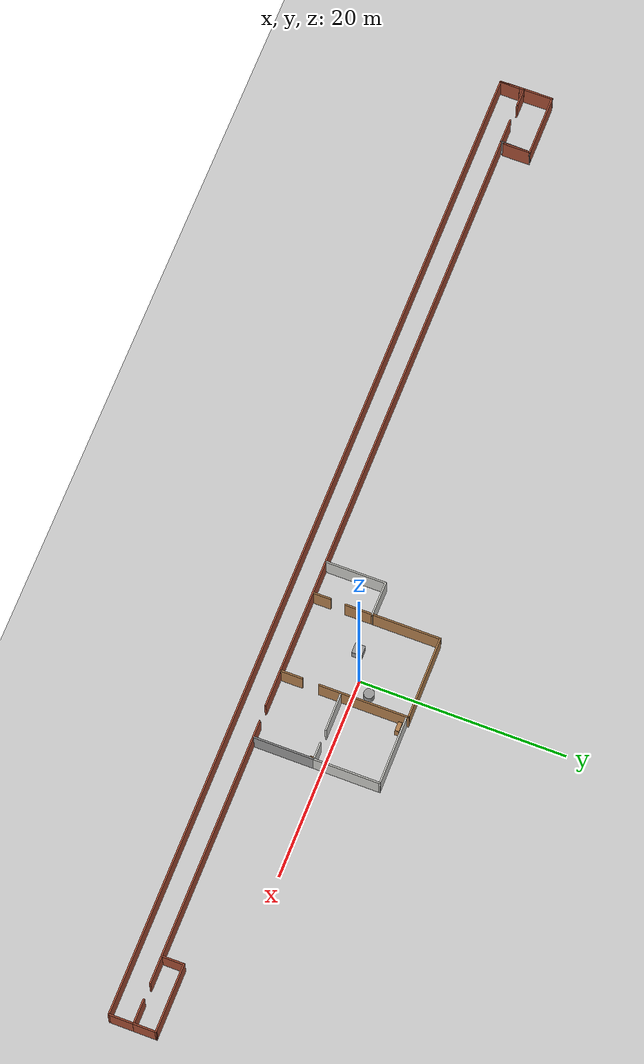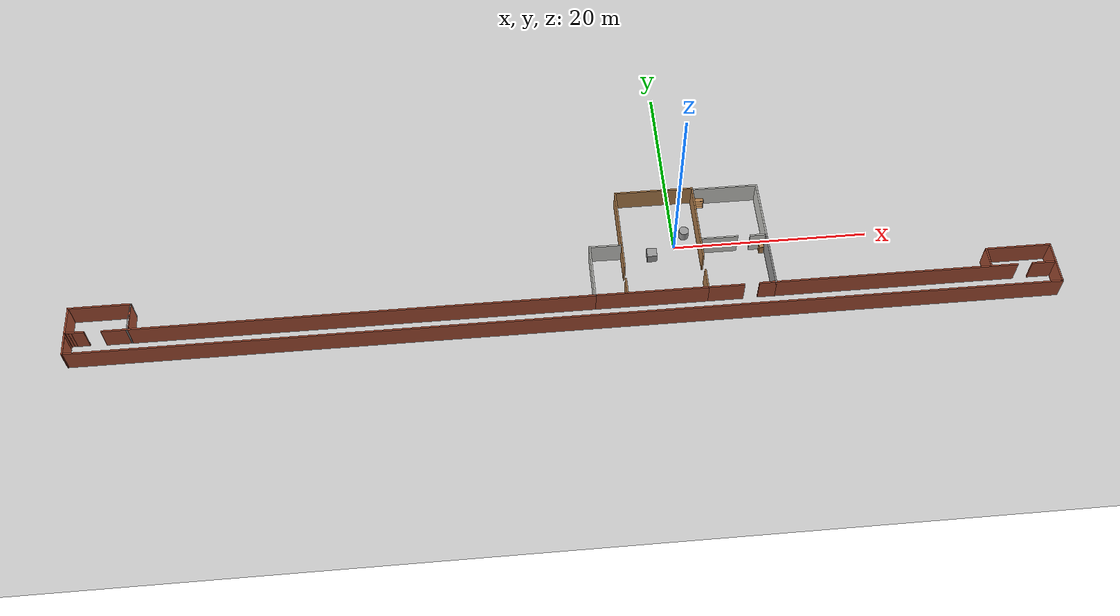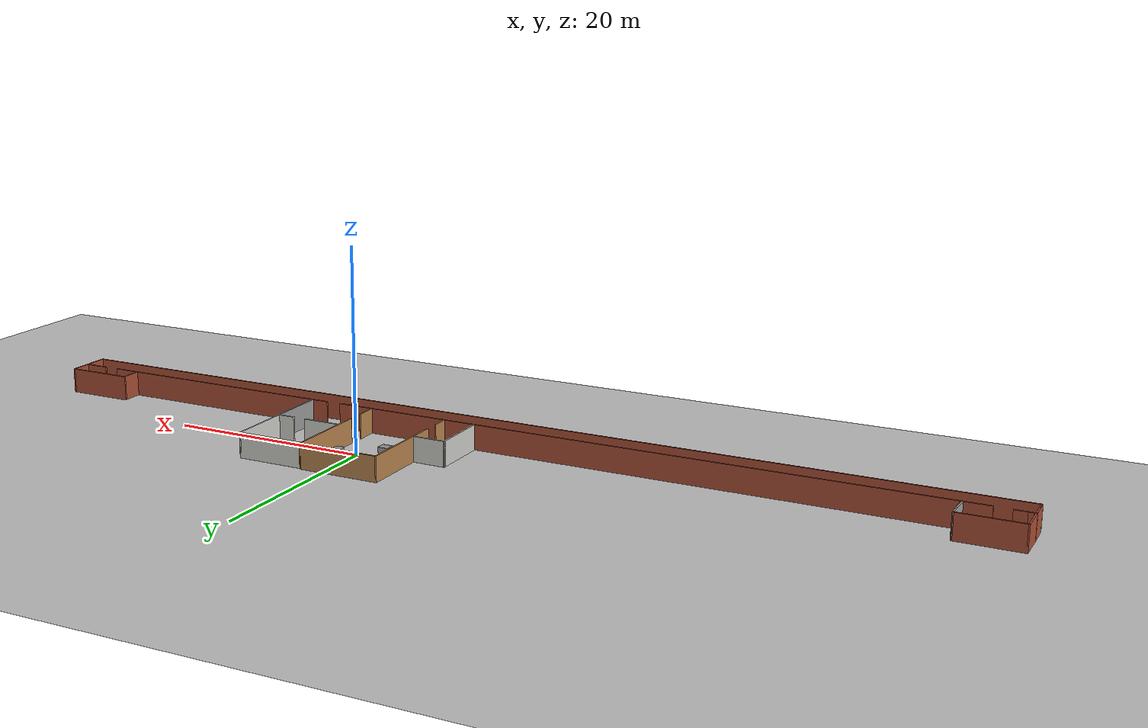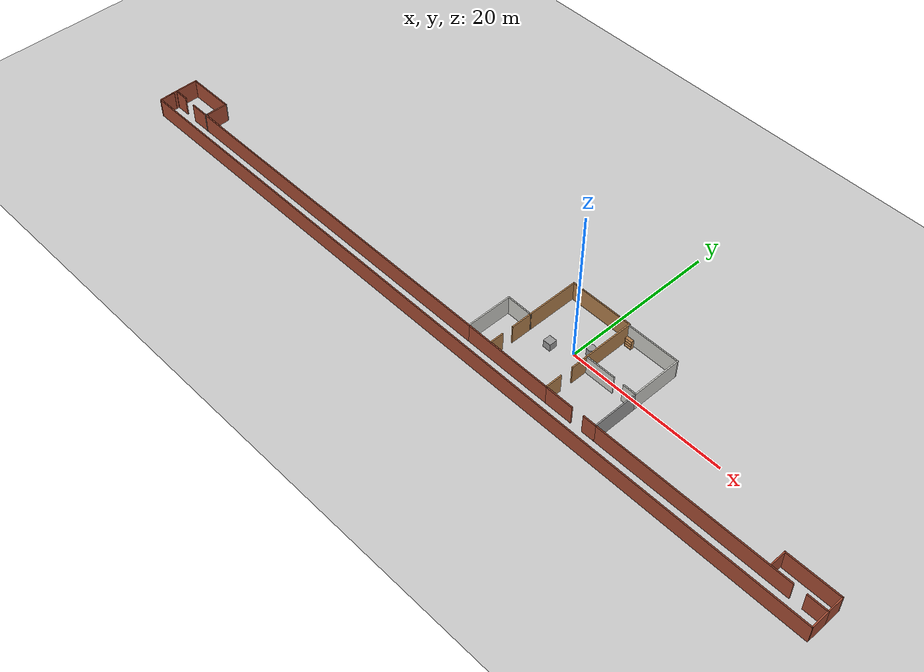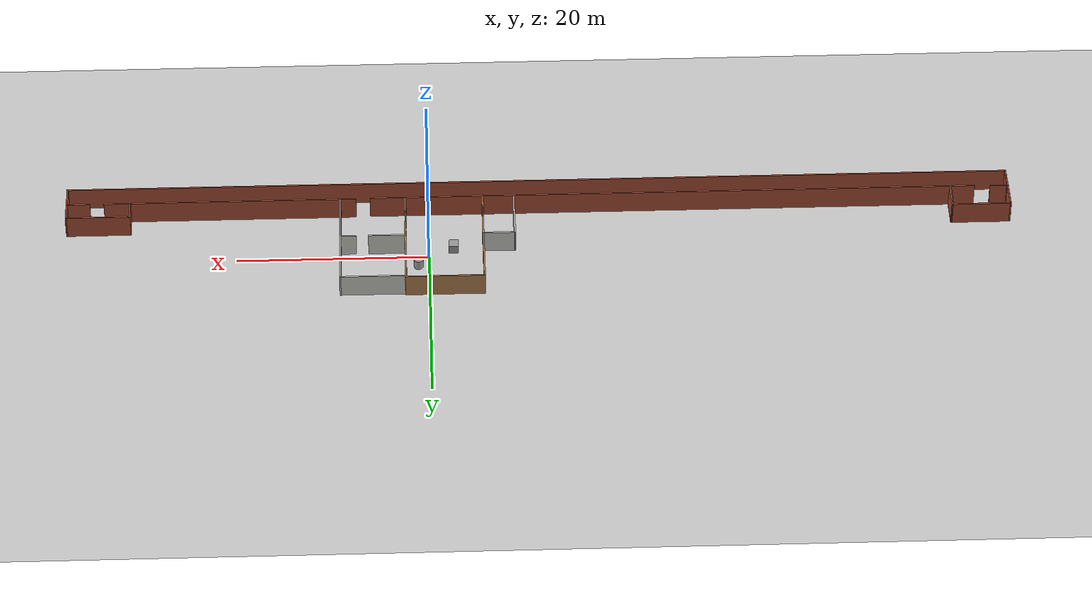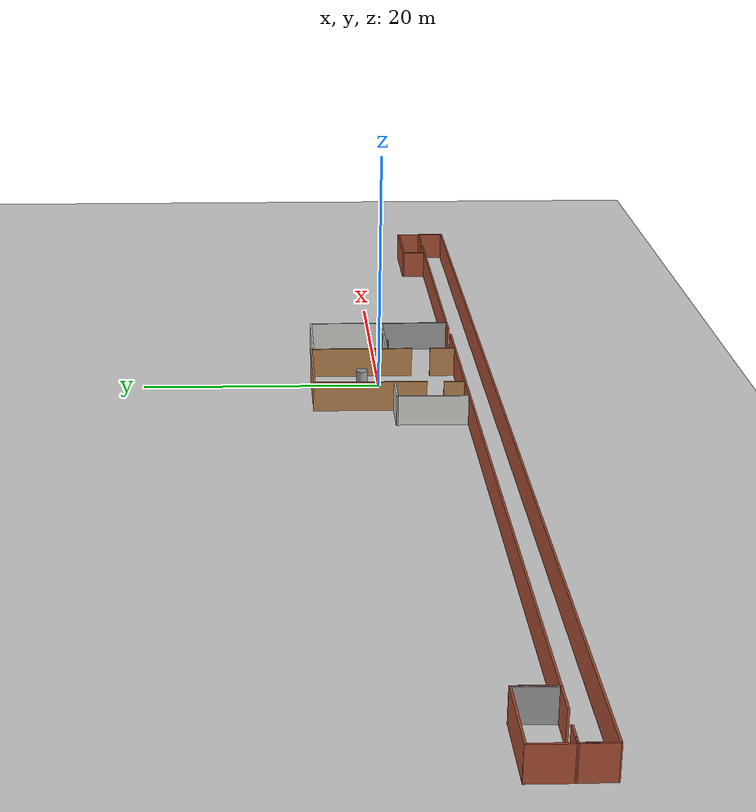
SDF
<sdf version="1.6">
 <world name="default">
  <model name="ground_plane">
   <static>1</static>
   <link name="link">
    <collision name="collision">
     <geometry><plane><normal>0 0 1</normal><size>100 100</size></plane></geometry>
     <surface>
      <contact><collide_bitmask>65535</collide_bitmask></contact>
      <friction><ode><mu>100</mu><mu2>50</mu2></ode></friction>
     </surface>
    </collision>
    <visual name="visual">
     <cast_shadows>0</cast_shadows>
     <geometry><plane><normal>0 0 1</normal><size>100 100</size></plane></geometry>
     <material>
      <script><uri>file://media/materials/scripts/gazebo.material</uri><name>Gazebo/Grey</name></script>
     </material>
    </visual>
   </link>
  </model>
  <light name="sun" type="directional">
   <pose>0 0 10 0 -0 0</pose>
   <diffuse>0.8 0.8 0.8 1</diffuse>
   <specular>0.2 0.2 0.2 1</specular>
   <attenuation>
    <range>1000</range>
    <constant>0.9</constant>
    <linear>0.01</linear>
    <quadratic>0.001</quadratic>
   </attenuation>
   <direction>-0.5 0.1 -0.9</direction>
  </light>
  <gravity>0 0 -9.8</gravity>
  <magnetic_field>6e-06 2.3e-05 -4.2e-05</magnetic_field>
  <atmosphere type="adiabatic"/>
  <physics name="default_physics" default="0" type="ode">
   <max_step_size>0.001</max_step_size>
   <real_time_factor>1</real_time_factor>
   <real_time_update_rate>1000</real_time_update_rate>
  </physics>
  <scene><ambient>0.4 0.4 0.4 1</ambient><background>0.7 0.7 0.7 1</background><shadows>1</shadows></scene>
  <audio><device>default</device></audio>
  <spherical_coordinates>
   <surface_model>EARTH_WGS84</surface_model>
   <latitude_deg>0</latitude_deg>
   <longitude_deg>0</longitude_deg>
   <elevation>0</elevation>
   <heading_deg>0</heading_deg>
  </spherical_coordinates>
  <model name="unit_cylinder">
   <pose>1.11383 1.37184 0.499998 3e-06 -2e-06 0</pose>
   <link name="link">
    <inertial>
     <mass>1</mass>
     <inertia><ixx>0.145833</ixx><ixy>0</ixy><ixz>0</ixz><iyy>0.145833</iyy><iyz>0</iyz><izz>0.125</izz></inertia>
    </inertial>
    <collision name="collision">
     <geometry><cylinder><radius>0.5</radius><length>1</length></cylinder></geometry>
    </collision>
    <visual name="visual">
     <geometry><cylinder><radius>0.5</radius><length>1</length></cylinder></geometry>
     <material>
      <script><name>Gazebo/Grey</name><uri>file://media/materials/scripts/gazebo.material</uri></script>
     </material>
    </visual>
   </link>
  </model>
  <model name="unit_box">
   <pose>-2.52458 -1.04449 0.499995 0 1e-05 0</pose>
   <link name="link">
    <inertial>
     <mass>1</mass>
     <inertia>
      <ixx>0.166667</ixx>
      <ixy>0</ixy>
      <ixz>0</ixz>
      <iyy>0.166667</iyy>
      <iyz>0</iyz>
      <izz>0.166667</izz>
     </inertia>
    </inertial>
    <collision name="collision"><geometry><box><size>1 1 1</size></box></geometry></collision>
    <visual name="visual">
     <geometry><box><size>1 1 1</size></box></geometry>
     <material>
      <script><name>Gazebo/Grey</name><uri>file://media/materials/scripts/gazebo.material</uri></script>
     </material>
    </visual>
   </link>
  </model>
  <model name="building.model">
   <pose>-11.5395 -1.66476 0 0 -0 0</pose>
   <link name="Wall_100">
    <collision name="Wall_100_Collision">
     <geometry><box><size>6.25 0.15 2.5</size></box></geometry>
     <pose>0 0 1.25 0 -0 0</pose>
    </collision>
    <visual name="Wall_100_Visual">
     <pose>0 0 1.25 0 -0 0</pose>
     <geometry><box><size>6.25 0.15 2.5</size></box></geometry>
     <material>
      <script><uri>file://media/materials/scripts/gazebo.material</uri><name>Gazebo/Bricks</name></script>
      <ambient>1 1 1 1</ambient>
     </material>
     <meta><layer>0</layer></meta>
    </visual>
    <pose>-46.2678 -2.14479 0 0 -0 0</pose>
   </link>
   <link name="Wall_101">
    <collision name="Wall_101_Collision">
     <geometry><box><size>2.75 0.15 2.5</size></box></geometry>
     <pose>0 0 1.25 0 -0 0</pose>
    </collision>
    <visual name="Wall_101_Visual">
     <pose>0 0 1.25 0 -0 0</pose>
     <geometry><box><size>2.75 0.15 2.5</size></box></geometry>
     <material>
      <script><uri>file://media/materials/scripts/gazebo.material</uri><name>Gazebo/Bricks</name></script>
      <ambient>1 1 1 1</ambient>
     </material>
     <meta><layer>0</layer></meta>
    </visual>
    <pose>-43.2178 -3.44479 0 0 -0 -1.5708</pose>
   </link>
   <link name="Wall_104">
    <collision name="Wall_104_Collision">
     <geometry><box><size>3.08499 0.15 2.5</size></box></geometry>
     <pose>0 0 1.25 0 -0 0</pose>
    </collision>
    <visual name="Wall_104_Visual">
     <pose>0 0 1.25 0 -0 0</pose>
     <geometry><box><size>3.08499 0.15 2.5</size></box></geometry>
     <material>
      <script><uri>file://media/materials/scripts/gazebo.material</uri><name>Gazebo/Grey</name></script>
      <ambient>1 1 1 1</ambient>
     </material>
     <meta><layer>0</layer></meta>
    </visual>
    <pose>-43.2604 -3.61166 0 0 -0 1.54173</pose>
   </link>
   <link name="Wall_106">
    <collision name="Wall_106_Collision">
     <geometry><box><size>2.25 0.15 2.5</size></box></geometry>
     <pose>0 0 1.25 0 -0 0</pose>
    </collision>
    <visual name="Wall_106_Visual">
     <pose>0 0 1.25 0 -0 0</pose>
     <geometry><box><size>2.25 0.15 2.5</size></box></geometry>
     <material>
      <script><uri>file://media/materials/scripts/gazebo.material</uri><name>Gazebo/Bricks</name></script>
      <ambient>1 1 1 1</ambient>
     </material>
     <meta><layer>0</layer></meta>
    </visual>
    <pose>49.3189 -3.94785 0 0 -0 1.5708</pose>
   </link>
   <link name="Wall_107">
    <collision name="Wall_107_Collision">
     <geometry><box><size>6.75 0.15 2.5</size></box></geometry>
     <pose>0 0 1.25 0 -0 0</pose>
    </collision>
    <visual name="Wall_107_Visual">
     <pose>0 0 1.25 0 -0 0</pose>
     <geometry><box><size>6.75 0.15 2.5</size></box></geometry>
     <material>
      <script><uri>file://media/materials/scripts/gazebo.material</uri><name>Gazebo/Bricks</name></script>
      <ambient>1 1 1 1</ambient>
     </material>
     <meta><layer>0</layer></meta>
    </visual>
    <pose>46.0189 -2.89785 0 0 -0 3.14159</pose>
   </link>
   <link name="Wall_108">
    <collision name="Wall_108_Collision">
     <geometry><box><size>2.25 0.15 2.5</size></box></geometry>
     <pose>0 0 1.25 0 -0 0</pose>
    </collision>
    <visual name="Wall_108_Visual">
     <pose>0 0 1.25 0 -0 0</pose>
     <geometry><box><size>2.25 0.15 2.5</size></box></geometry>
     <material>
      <script><uri>file://media/materials/scripts/gazebo.material</uri><name>Gazebo/Bricks</name></script>
      <ambient>1 1 1 1</ambient>
     </material>
     <meta><layer>0</layer></meta>
    </visual>
    <pose>42.7189 -3.94785 0 0 -0 -1.5708</pose>
   </link>
   <link name="Wall_59">
    <collision name="Wall_59_Collision">
     <geometry><box><size>6.75 0.15 2.5</size></box></geometry>
     <pose>0 0 1.25 0 -0 0</pose>
    </collision>
    <visual name="Wall_59_Visual">
     <pose>0 0 1.25 0 -0 0</pose>
     <geometry><box><size>6.75 0.15 2.5</size></box></geometry>
     <material>
      <script><uri>file://media/materials/scripts/gazebo.material</uri><name>Gazebo/Wood</name></script>
      <ambient>1 1 1 1</ambient>
     </material>
     <meta><layer>0</layer></meta>
    </visual>
    <pose>5.89407 4.04901 0 0 -0 1.5708</pose>
   </link>
   <link name="Wall_60">
    <collision name="Wall_60_Collision">
     <geometry><box><size>8.25 0.15 2.5</size></box></geometry>
     <pose>0 0 1.25 0 -0 0</pose>
    </collision>
    <visual name="Wall_60_Visual">
     <pose>0 0 1.25 0 -0 0</pose>
     <geometry><box><size>8.25 0.15 2.5</size></box></geometry>
     <material>
      <script><uri>file://media/materials/scripts/gazebo.material</uri><name>Gazebo/Wood</name></script>
      <ambient>1 1 1 1</ambient>
     </material>
     <meta><layer>0</layer></meta>
    </visual>
    <pose>9.94407 7.34901 0 0 -0 0</pose>
   </link>
   <link name="Wall_61">
    <collision name="Wall_61_Collision">
     <geometry><box><size>8.75 0.15 2.5</size></box></geometry>
     <pose>0 0 1.25 0 -0 0</pose>
    </collision>
    <visual name="Wall_61_Visual">
     <pose>0 0 1.25 0 -0 0</pose>
     <geometry><box><size>8.75 0.15 2.5</size></box></geometry>
     <material>
      <script><uri>file://media/materials/scripts/gazebo.material</uri><name>Gazebo/Wood</name></script>
      <ambient>1 1 1 1</ambient>
     </material>
     <meta><layer>0</layer></meta>
    </visual>
    <pose>13.9941 3.04901 0 0 -0 -1.5708</pose>
   </link>
   <link name="Wall_65">
    <collision name="Wall_65_Collision">
     <geometry><box><size>2.25 0.15 2.5</size></box></geometry>
     <pose>0 0 1.25 0 -0 0</pose>
    </collision>
    <visual name="Wall_65_Visual">
     <pose>0 0 1.25 0 -0 0</pose>
     <geometry><box><size>2.25 0.15 2.5</size></box></geometry>
     <material>
      <script><uri>file://media/materials/scripts/gazebo.material</uri><name>Gazebo/Wood</name></script>
      <ambient>1 1 1 1</ambient>
     </material>
     <meta><layer>0</layer></meta>
    </visual>
    <pose>13.9578 -4.01847 0 0 -0 -1.5708</pose>
   </link>
   <link name="Wall_66">
    <collision name="Wall_66_Collision">
     <geometry><box><size>11.5 0.15 2.5</size></box></geometry>
     <pose>0 0 1.25 0 -0 0</pose>
    </collision>
    <visual name="Wall_66_Visual">
     <pose>0 0 1.25 0 -0 0</pose>
     <geometry><box><size>11.5 0.15 2.5</size></box></geometry>
     <material>
      <script><uri>file://media/materials/scripts/gazebo.material</uri><name>Gazebo/Bricks</name></script>
      <ambient>1 1 1 1</ambient>
     </material>
     <meta><layer>0</layer></meta>
    </visual>
    <pose>8.28284 -5.06847 0 0 -0 3.14159</pose>
   </link>
   <link name="Wall_67">
    <collision name="Wall_67_Collision">
     <geometry><box><size>6 0.15 2.5</size></box></geometry>
     <pose>0 0 1.25 0 -0 0</pose>
    </collision>
    <visual name="Wall_67_Visual">
     <pose>0 0 1.25 0 -0 0</pose>
     <geometry><box><size>6 0.15 2.5</size></box></geometry>
     <material>
      <script><uri>file://media/materials/scripts/gazebo.material</uri><name>Gazebo/CeilingTiled</name></script>
      <ambient>1 1 1 1</ambient>
     </material>
     <meta><layer>0</layer></meta>
    </visual>
    <pose>2.60784 -2.14347 0 0 -0 1.5708</pose>
   </link>
   <link name="Wall_68">
    <collision name="Wall_68_Collision">
     <geometry><box><size>3.43639 0.15 2.5</size></box></geometry>
     <pose>0 0 1.25 0 -0 0</pose>
    </collision>
    <visual name="Wall_68_Visual">
     <pose>0 0 1.25 0 -0 0</pose>
     <geometry><box><size>3.43639 0.15 2.5</size></box></geometry>
     <material>
      <script><uri>file://media/materials/scripts/gazebo.material</uri><name>Gazebo/CeilingTiled</name></script>
      <ambient>1 1 1 1</ambient>
     </material>
     <meta><layer>0</layer></meta>
    </visual>
    <pose>4.25096 0.765269 0 0 -0 -0.009896</pose>
   </link>
   <link name="Wall_69">
    <collision name="Wall_69_Collision">
     <geometry><box><size>2.75 0.15 2.5</size></box></geometry>
     <pose>0 0 1.25 0 -0 0</pose>
    </collision>
    <visual name="Wall_69_Visual">
     <pose>0 0 1.25 0 -0 0</pose>
     <geometry><box><size>2.75 0.15 2.5</size></box></geometry>
     <material>
      <script><uri>file://media/materials/scripts/gazebo.material</uri><name>Gazebo/Wood</name></script>
      <ambient>1 1 1 1</ambient>
     </material>
     <meta><layer>0</layer></meta>
    </visual>
    <pose>5.89407 -0.550992 0 0 -0 -1.5708</pose>
   </link>
   <link name="Wall_71">
    <collision name="Wall_71_Collision">
     <geometry><box><size>1.75 0.15 2.5</size></box></geometry>
     <pose>0 0 1.25 0 -0 0</pose>
    </collision>
    <visual name="Wall_71_Visual">
     <pose>0 0 1.25 0 -0 0</pose>
     <geometry><box><size>1.75 0.15 2.5</size></box></geometry>
     <material>
      <script><uri>file://media/materials/scripts/gazebo.material</uri><name>Gazebo/Wood</name></script>
      <ambient>1 1 1 1</ambient>
     </material>
     <meta><layer>0</layer></meta>
    </visual>
    <pose>5.86268 -4.169 0 0 -0 1.5708</pose>
   </link>
   <link name="Wall_73">
    <collision name="Wall_73_Collision">
     <geometry><box><size>3.75 0.15 2.5</size></box></geometry>
     <pose>0 0 1.25 0 -0 0</pose>
    </collision>
    <visual name="Wall_73_Visual">
     <pose>0 0 1.25 0 -0 0</pose>
     <geometry><box><size>3.75 0.15 2.5</size></box></geometry>
     <material>
      <script><uri>file://media/materials/scripts/gazebo.material</uri><name>Gazebo/Bricks</name></script>
      <ambient>1 1 1 1</ambient>
     </material>
     <meta><layer>0</layer></meta>
    </visual>
    <pose>15.7578 -5.06847 0 0 -0 0</pose>
   </link>
   <link name="Wall_75">
    <collision name="Wall_75_Collision">
     <geometry><box><size>1.75 0.15 2.5</size></box></geometry>
     <pose>0 0 1.25 0 -0 0</pose>
    </collision>
    <visual name="Wall_75_Visual">
     <pose>0 0 1.25 0 -0 0</pose>
     <geometry><box><size>1.75 0.15 2.5</size></box></geometry>
     <material>
      <script><uri>file://media/materials/scripts/gazebo.material</uri><name>Gazebo/Bricks</name></script>
      <ambient>1 1 1 1</ambient>
     </material>
     <meta><layer>0</layer></meta>
    </visual>
    <pose>19.9685 -5.01552 0 0 -0 0</pose>
   </link>
   <link name="Wall_76">
    <collision name="Wall_76_Collision">
     <geometry><box><size>6 0.15 2.5</size></box></geometry>
     <pose>0 0 1.25 0 -0 0</pose>
    </collision>
    <visual name="Wall_76_Visual">
     <pose>0 0 1.25 0 -0 0</pose>
     <geometry><box><size>6 0.15 2.5</size></box></geometry>
     <material>
      <script><uri>file://media/materials/scripts/gazebo.material</uri><name>Gazebo/Grey</name></script>
      <ambient>1 1 1 1</ambient>
     </material>
     <meta><layer>0</layer></meta>
    </visual>
    <pose>20.7685 -2.09052 0 0 -0 1.5708</pose>
   </link>
   <link name="Wall_77">
    <collision name="Wall_77_Collision">
     <geometry><box><size>1.75 0.15 2.5</size></box></geometry>
     <pose>0 0 1.25 0 -0 0</pose>
    </collision>
    <visual name="Wall_77_Visual">
     <pose>0 0 1.25 0 -0 0</pose>
     <geometry><box><size>1.75 0.15 2.5</size></box></geometry>
     <material>
      <script><uri>file://media/materials/scripts/gazebo.material</uri><name>Gazebo/CeilingTiled</name></script>
      <ambient>1 1 1 1</ambient>
     </material>
     <meta><layer>0</layer></meta>
    </visual>
    <pose>19.9685 0.834478 0 0 -0 3.14159</pose>
   </link>
   <link name="Wall_79">
    <collision name="Wall_79_Collision">
     <geometry><box><size>3.75 0.15 2.5</size></box></geometry>
     <pose>0 0 1.25 0 -0 0</pose>
    </collision>
    <visual name="Wall_79_Visual">
     <pose>0 0 1.25 0 -0 0</pose>
     <geometry><box><size>3.75 0.15 2.5</size></box></geometry>
     <material>
      <script><uri>file://media/materials/scripts/gazebo.material</uri><name>Gazebo/CeilingTiled</name></script>
      <ambient>1 1 1 1</ambient>
     </material>
     <meta><layer>0</layer></meta>
    </visual>
    <pose>15.9728 0.846491 0 0 -0 3.14159</pose>
   </link>
   <link name="Wall_81">
    <collision name="Wall_81_Collision">
     <geometry><box><size>6.5 0.15 2.5</size></box></geometry>
     <pose>0 0 1.25 0 -0 0</pose>
    </collision>
    <visual name="Wall_81_Visual">
     <pose>0 0 1.25 0 -0 0</pose>
     <geometry><box><size>6.5 0.15 2.5</size></box></geometry>
     <material>
      <script><uri>file://media/materials/scripts/gazebo.material</uri><name>Gazebo/CeilingTiled</name></script>
      <ambient>1 1 1 1</ambient>
     </material>
     <meta><layer>0</layer></meta>
    </visual>
    <pose>20.7685 4.00948 0 0 -0 1.5708</pose>
   </link>
   <link name="Wall_82">
    <collision name="Wall_82_Collision">
     <geometry><box><size>6.75 0.15 2.5</size></box></geometry>
     <pose>0 0 1.25 0 -0 0</pose>
    </collision>
    <visual name="Wall_82_Visual">
     <pose>0 0 1.25 0 -0 0</pose>
     <geometry><box><size>6.75 0.15 2.5</size></box></geometry>
     <material>
      <script><uri>file://media/materials/scripts/gazebo.material</uri><name>Gazebo/CeilingTiled</name></script>
      <ambient>1 1 1 1</ambient>
     </material>
     <meta><layer>0</layer></meta>
    </visual>
    <pose>17.4685 7.18448 0 0 -0 3.14159</pose>
   </link>
   <link name="Wall_84">
    <collision name="Wall_84_Collision">
     <geometry><box><size>24.75 0.15 2.5</size></box></geometry>
     <pose>0 0 1.25 0 -0 0</pose>
    </collision>
    <visual name="Wall_84_Visual">
     <pose>0 0 1.25 0 -0 0</pose>
     <geometry><box><size>24.75 0.15 2.5</size></box></geometry>
     <material>
      <script><uri>file://media/materials/scripts/gazebo.material</uri><name>Gazebo/Bricks</name></script>
      <ambient>1 1 1 1</ambient>
     </material>
     <meta><layer>0</layer></meta>
    </visual>
    <pose>33.0685 -5.01552 0 0 -0 0</pose>
   </link>
   <link name="Wall_86">
    <collision name="Wall_86_Collision">
     <geometry><box><size>2.5 0.15 2.5</size></box></geometry>
     <pose>0 0 1.25 0 -0 0</pose>
    </collision>
    <visual name="Wall_86_Visual">
     <pose>0 0 1.25 0 -0 0</pose>
     <geometry><box><size>2.5 0.15 2.5</size></box></geometry>
     <material>
      <script><uri>file://media/materials/scripts/gazebo.material</uri><name>Gazebo/Bricks</name></script>
      <ambient>1 1 1 1</ambient>
     </material>
     <meta><layer>0</layer></meta>
    </visual>
    <pose>48.1439 -4.99785 0 0 -0 0</pose>
   </link>
   <link name="Wall_87">
    <collision name="Wall_87_Collision">
     <geometry><box><size>2.5 0.15 2.5</size></box></geometry>
     <pose>0 0 1.25 0 -0 0</pose>
    </collision>
    <visual name="Wall_87_Visual">
     <pose>0 0 1.25 0 -0 0</pose>
     <geometry><box><size>2.5 0.15 2.5</size></box></geometry>
     <material>
      <script><uri>file://media/materials/scripts/gazebo.material</uri><name>Gazebo/Bricks</name></script>
      <ambient>1 1 1 1</ambient>
     </material>
     <meta><layer>0</layer></meta>
    </visual>
    <pose>49.3189 -6.17285 0 0 -0 -1.5708</pose>
   </link>
   <link name="Wall_88">
    <collision name="Wall_88_Collision">
     <geometry><box><size>98.75 0.15 2.5</size></box></geometry>
     <pose>0 0 1.25 0 -0 0</pose>
    </collision>
    <visual name="Wall_88_Visual">
     <pose>0 0 1.25 0 -0 0</pose>
     <geometry><box><size>98.75 0.15 2.5</size></box></geometry>
     <material>
      <script><uri>file://media/materials/scripts/gazebo.material</uri><name>Gazebo/Bricks</name></script>
      <ambient>1 1 1 1</ambient>
     </material>
     <meta><layer>0</layer></meta>
    </visual>
    <pose>0.018926 -7.34785 0 0 -0 3.14159</pose>
   </link>
   <link name="Wall_89">
    <collision name="Wall_89_Collision">
     <geometry><box><size>2 0.15 2.5</size></box></geometry>
     <pose>0 0 1.25 0 -0 0</pose>
    </collision>
    <visual name="Wall_89_Visual">
     <pose>0 0 1.25 0 -0 0</pose>
     <geometry><box><size>2 0.15 2.5</size></box></geometry>
     <material>
      <script><uri>file://media/materials/scripts/gazebo.material</uri><name>Gazebo/Bricks</name></script>
      <ambient>1 1 1 1</ambient>
     </material>
     <meta><layer>0</layer></meta>
    </visual>
    <pose>-49.2811 -6.42285 0 0 -0 1.5708</pose>
   </link>
   <link name="Wall_91">
    <collision name="Wall_91_Collision">
     <geometry><box><size>48.5 0.15 2.5</size></box></geometry>
     <pose>0 0 1.25 0 -0 0</pose>
    </collision>
    <visual name="Wall_91_Visual">
     <pose>0 0 1.25 0 -0 0</pose>
     <geometry><box><size>48.5 0.15 2.5</size></box></geometry>
     <material>
      <script><uri>file://media/materials/scripts/gazebo.material</uri><name>Gazebo/Bricks</name></script>
      <ambient>1 1 1 1</ambient>
     </material>
     <meta><layer>0</layer></meta>
    </visual>
    <pose>-21.5672 -5.06847 0 0 -0 3.14159</pose>
   </link>
   <link name="Wall_93">
    <collision name="Wall_93_Collision">
     <geometry><box><size>1.75 0.15 2.5</size></box></geometry>
     <pose>0 0 1.25 0 -0 0</pose>
    </collision>
    <visual name="Wall_93_Visual">
     <pose>0 0 1.25 0 -0 0</pose>
     <geometry><box><size>1.75 0.15 2.5</size></box></geometry>
     <material>
      <script><uri>file://media/materials/scripts/gazebo.material</uri><name>Gazebo/Bricks</name></script>
      <ambient>1 1 1 1</ambient>
     </material>
     <meta><layer>0</layer></meta>
    </visual>
    <pose>-48.3149 -4.99479 0 0 -0 3.14159</pose>
   </link>
   <link name="Wall_96">
    <collision name="Wall_96_Collision">
     <geometry><box><size>0.75 0.15 2.5</size></box></geometry>
     <pose>0 0 1.25 0 -0 0</pose>
    </collision>
    <visual name="Wall_96_Visual">
     <pose>0 0 1.25 0 -0 0</pose>
     <geometry><box><size>0.75 0.15 2.5</size></box></geometry>
     <material>
      <script><uri>file://media/materials/scripts/gazebo.material</uri><name>Gazebo/Bricks</name></script>
      <ambient>1 1 1 1</ambient>
     </material>
     <meta><layer>0</layer></meta>
    </visual>
    <pose>-49.0178 -4.99479 0 0 -0 3.14159</pose>
   </link>
   <link name="Wall_97">
    <collision name="Wall_97_Collision">
     <geometry><box><size>2.50334 0.15 2.5</size></box></geometry>
     <pose>0 0 1.25 0 -0 0</pose>
    </collision>
    <visual name="Wall_97_Visual">
     <pose>0 0 1.25 0 -0 0</pose>
     <geometry><box><size>2.50334 0.15 2.5</size></box></geometry>
     <material>
      <script><uri>file://media/materials/scripts/gazebo.material</uri><name>Gazebo/Bricks</name></script>
      <ambient>1 1 1 1</ambient>
     </material>
     <meta><layer>0</layer></meta>
    </visual>
    <pose>-49.2994 -6.17132 0 0 -0 -1.5552</pose>
   </link>
   <link name="Wall_99">
    <collision name="Wall_99_Collision">
     <geometry><box><size>3 0.15 2.5</size></box></geometry>
     <pose>0 0 1.25 0 -0 0</pose>
    </collision>
    <visual name="Wall_99_Visual">
     <pose>0 0 1.25 0 -0 0</pose>
     <geometry><box><size>3 0.15 2.5</size></box></geometry>
     <material>
      <script><uri>file://media/materials/scripts/gazebo.material</uri><name>Gazebo/Bricks</name></script>
      <ambient>1 1 1 1</ambient>
     </material>
     <meta><layer>0</layer></meta>
    </visual>
    <pose>-49.3178 -3.56979 0 0 -0 1.5708</pose>
   </link>
   <static>1</static>
  </model>
  <model name="bookshelf">
   <static>1</static>
   <link name="link">
    <inertial><mass>1</mass></inertial>
    <collision name="back">
     <pose>0 0.005 0.6 0 -0 0</pose>
     <geometry><box><size>0.9 0.01 1.2</size></box></geometry>
    </collision>
    <visual name="visual1">
     <pose>0 0.005 0.6 0 -0 0</pose>
     <geometry><box><size>0.9 0.01 1.2</size></box></geometry>
     <material>
      <script><uri>file://media/materials/scripts/gazebo.material</uri><name>Gazebo/Wood</name></script>
     </material>
    </visual>
    <collision name="left_side">
     <pose>0.45 -0.195 0.6 0 -0 0</pose>
     <geometry><box><size>0.02 0.4 1.2</size></box></geometry>
    </collision>
    <visual name="visual2">
     <pose>0.45 -0.195 0.6 0 -0 0</pose>
     <geometry><box><size>0.02 0.4 1.2</size></box></geometry>
     <material>
      <script><uri>file://media/materials/scripts/gazebo.material</uri><name>Gazebo/Wood</name></script>
     </material>
    </visual>
    <collision name="right_side">
     <pose>-0.45 -0.195 0.6 0 -0 0</pose>
     <geometry><box><size>0.02 0.4 1.2</size></box></geometry>
    </collision>
    <visual name="visual3">
     <pose>-0.45 -0.195 0.6 0 -0 0</pose>
     <geometry><box><size>0.02 0.4 1.2</size></box></geometry>
     <material>
      <script><uri>file://media/materials/scripts/gazebo.material</uri><name>Gazebo/Wood</name></script>
     </material>
    </visual>
    <collision name="bottom">
     <pose>0 -0.195 0.03 0 -0 0</pose>
     <geometry><box><size>0.88 0.4 0.06</size></box></geometry>
    </collision>
    <visual name="visual4">
     <pose>0 -0.195 0.03 0 -0 0</pose>
     <geometry><box><size>0.88 0.4 0.06</size></box></geometry>
     <material>
      <script><uri>file://media/materials/scripts/gazebo.material</uri><name>Gazebo/Wood</name></script>
     </material>
    </visual>
    <collision name="top">
     <pose>0 -0.195 1.19 0 -0 0</pose>
     <geometry><box><size>0.88 0.4 0.02</size></box></geometry>
    </collision>
    <visual name="visual5">
     <pose>0 -0.195 1.19 0 -0 0</pose>
     <geometry><box><size>0.88 0.4 0.02</size></box></geometry>
     <material>
      <script><uri>file://media/materials/scripts/gazebo.material</uri><name>Gazebo/Wood</name></script>
     </material>
    </visual>
    <collision name="low_shelf">
     <pose>0 -0.195 0.43 0 -0 0</pose>
     <geometry><box><size>0.88 0.4 0.02</size></box></geometry>
    </collision>
    <visual name="visual6">
     <pose>0 -0.195 0.43 0 -0 0</pose>
     <geometry><box><size>0.88 0.4 0.02</size></box></geometry>
     <material>
      <script><uri>file://media/materials/scripts/gazebo.material</uri><name>Gazebo/Wood</name></script>
     </material>
    </visual>
    <collision name="high_shelf">
     <pose>0 -0.195 0.8 0 -0 0</pose>
     <geometry><box><size>0.88 0.4 0.02</size></box></geometry>
    </collision>
    <visual name="visual7">
     <pose>0 -0.195 0.8 0 -0 0</pose>
     <geometry><box><size>0.88 0.4 0.02</size></box></geometry>
     <material>
      <script><uri>file://media/materials/scripts/gazebo.material</uri><name>Gazebo/Wood</name></script>
     </material>
    </visual>
   </link>
   <pose>3.19056 5.2261 0 0 -0 0</pose>
  </model>
  <model name="cabinet">
   <static>1</static>
   <link name="cabinet_bottom_plate">
    <inertial>
     <pose>0 0 -1 0 -0 0</pose>
     <inertia><ixx>2.05</ixx><ixy>0</ixy><ixz>0</ixz><iyy>2.05</iyy><iyz>0</iyz><izz>2.05</izz></inertia>
     <mass>25</mass>
    </inertial>
    <collision name="cabinet_bottom_plate_geom">
     <pose>0 0 0.01 0 -0 0</pose>
     <geometry><box><size>0.45 0.45 0.02</size></box></geometry>
    </collision>
    <visual name="cabinet_bottom_plate_geom_visual">
     <pose>0 0 0.01 0 -0 0</pose>
     <geometry><box><size>0.45 0.45 0.02</size></box></geometry>
     <material>
      <script><uri>file://media/materials/scripts/gazebo.material</uri><name>Gazebo/Wood</name></script>
     </material>
    </visual>
    <collision name="cabinet_bottom_plate_geom_cabinet_back_plate">
     <pose>0.235 0 0.51 0 -0 0</pose>
     <geometry><box><size>0.02 0.45 1.02</size></box></geometry>
    </collision>
    <visual name="cabinet_bottom_plate_geom_cabinet_back_plate_visual">
     <pose>0.235 0 0.51 0 -0 0</pose>
     <geometry><box><size>0.02 0.45 1.02</size></box></geometry>
     <material>
      <script><uri>file://media/materials/scripts/gazebo.material</uri><name>Gazebo/Wood</name></script>
     </material>
    </visual>
    <collision name="cabinet_bottom_plate_geom_cabinet_left_plate">
     <pose>0 0.235 0.51 0 -0 0</pose>
     <geometry><box><size>0.45 0.02 1.02</size></box></geometry>
    </collision>
    <visual name="cabinet_bottom_plate_geom_cabinet_left_plate_visual">
     <pose>0 0.235 0.51 0 -0 0</pose>
     <geometry><box><size>0.45 0.02 1.02</size></box></geometry>
     <material>
      <script><uri>file://media/materials/scripts/gazebo.material</uri><name>Gazebo/Wood</name></script>
     </material>
    </visual>
    <collision name="cabinet_bottom_plate_geom_cabinet_middle_plate">
     <pose>0 0 0.51 0 -0 0</pose>
     <geometry><box><size>0.45 0.45 0.02</size></box></geometry>
    </collision>
    <visual name="cabinet_bottom_plate_geom_cabinet_middle_plate_visual">
     <pose>0 0 0.51 0 -0 0</pose>
     <geometry><box><size>0.45 0.45 0.02</size></box></geometry>
     <material>
      <script><uri>file://media/materials/scripts/gazebo.material</uri><name>Gazebo/Wood</name></script>
     </material>
    </visual>
    <collision name="cabinet_bottom_plate_geom_cabinet_right_plate">
     <pose>0 -0.235 0.51 0 -0 0</pose>
     <geometry><box><size>0.45 0.02 1.02</size></box></geometry>
    </collision>
    <visual name="cabinet_bottom_plate_geom_cabinet_right_plate_visual">
     <pose>0 -0.235 0.51 0 -0 0</pose>
     <geometry><box><size>0.45 0.02 1.02</size></box></geometry>
     <material>
      <script><uri>file://media/materials/scripts/gazebo.material</uri><name>Gazebo/Wood</name></script>
     </material>
    </visual>
    <collision name="cabinet_bottom_plate_geom_cabinet_top_plate">
     <pose>0 0 1.01 0 -0 0</pose>
     <geometry><box><size>0.45 0.45 0.02</size></box></geometry>
    </collision>
    <visual name="cabinet_bottom_plate_geom_cabinet_top_plate_visual">
     <pose>0 0 1.01 0 -0 0</pose>
     <geometry><box><size>0.45 0.45 0.02</size></box></geometry>
     <material>
      <script><uri>file://media/materials/scripts/gazebo.material</uri><name>Gazebo/Wood</name></script>
     </material>
    </visual>
   </link>
   <pose>8.81113 -1.18627 0 0 -0 0</pose>
  </model>
 </world>
</sdf>
